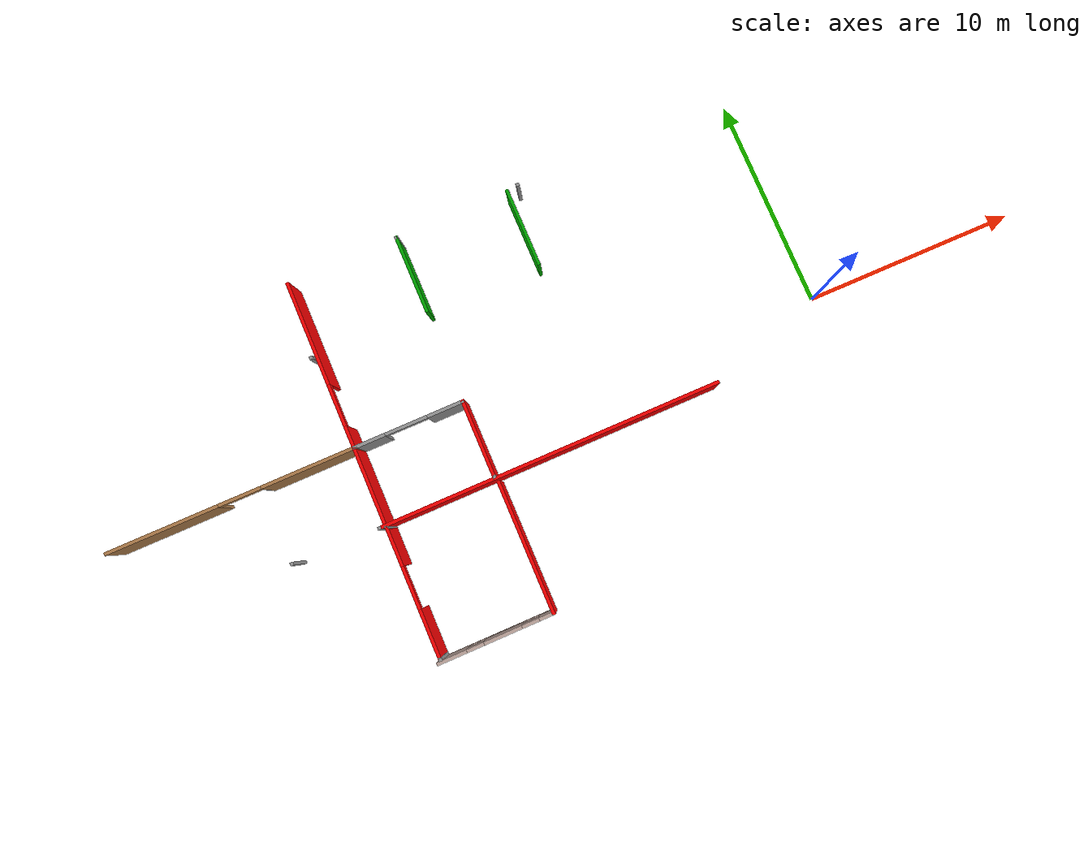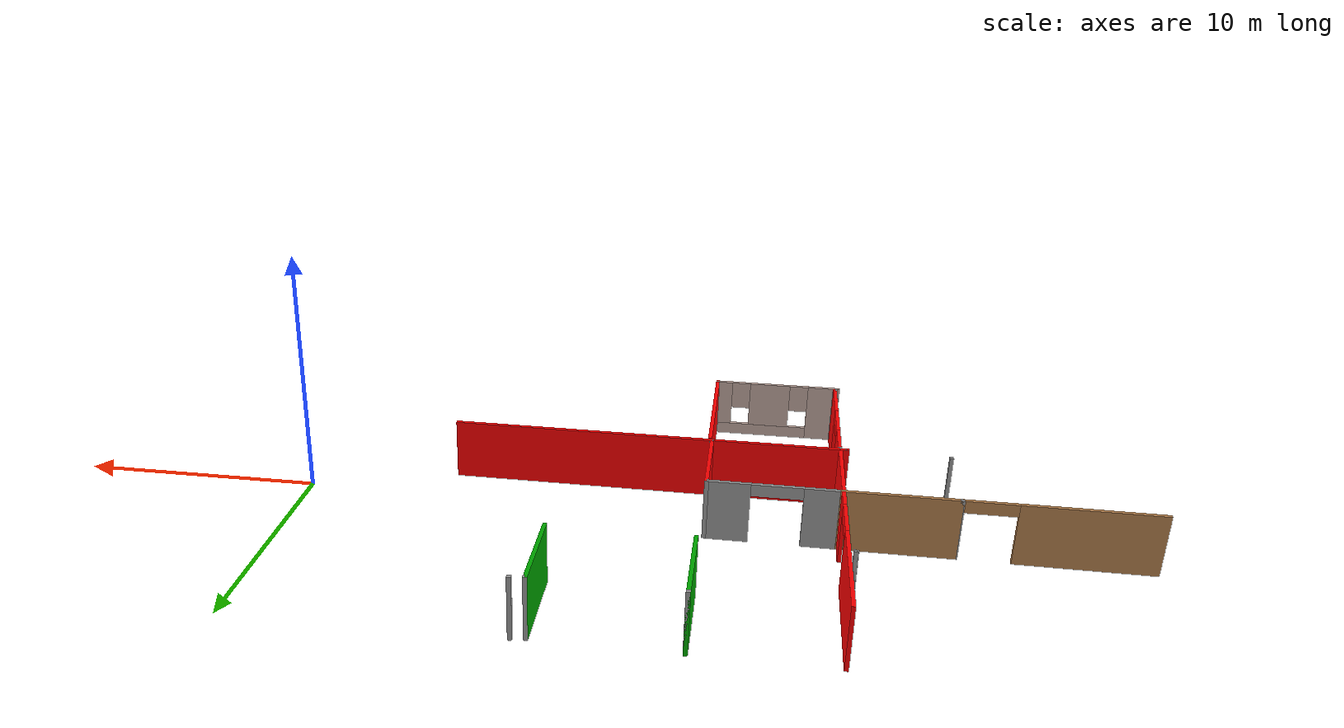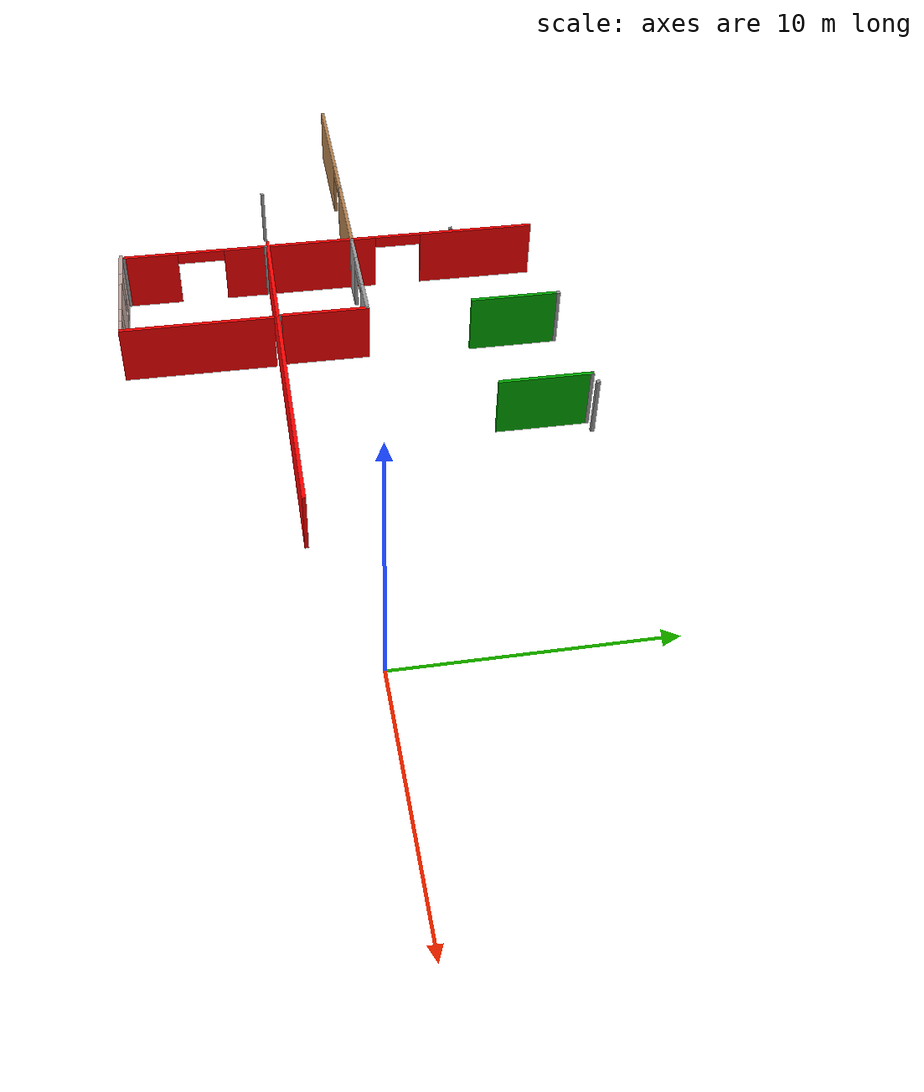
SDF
<sdf version="1.6">
 <model name="FloorPlan">
  <pose>-3.5402 -2.3631 0 0 -0 0</pose>
  <link name="Wall_11">
   <pose>-18.2258 6.2811 0 0 -0 -1.5708</pose>
   <visual name="Wall_11_Visual_0">
    <pose>-3.31145 0 1.25 0 -0 0</pose>
    <geometry><box><size>4.97711 0.15 2.5</size></box></geometry>
    <material>
     <script><uri>file://media/materials/scripts/gazebo.material</uri><name>Gazebo/Grey</name></script>
     <ambient>1 0 0 1</ambient>
    </material>
    <meta><layer>0</layer></meta>
   </visual>
   <collision name="Wall_11_Collision_0">
    <geometry><box><size>4.97711 0.15 2.5</size></box></geometry>
    <pose>-3.31145 0 1.25 0 -0 0</pose>
   </collision>
   <visual name="Wall_11_Visual_1">
    <pose>3.48855 0 1.25 0 -0 0</pose>
    <geometry><box><size>4.62289 0.15 2.5</size></box></geometry>
    <material>
     <script><uri>file://media/materials/scripts/gazebo.material</uri><name>Gazebo/Grey</name></script>
     <ambient>1 0 0 1</ambient>
    </material>
    <meta><layer>0</layer></meta>
   </visual>
   <collision name="Wall_11_Collision_1">
    <geometry><box><size>4.62289 0.15 2.5</size></box></geometry>
    <pose>3.48855 0 1.25 0 -0 0</pose>
   </collision>
   <visual name="Wall_11_Visual_2">
    <pose>0.177109 0 2.25 0 -0 0</pose>
    <geometry><box><size>2 0.15 0.5</size></box></geometry>
    <material>
     <script><uri>file://media/materials/scripts/gazebo.material</uri><name>Gazebo/Grey</name></script>
     <ambient>1 0 0 1</ambient>
    </material>
    <meta><layer>0</layer></meta>
   </visual>
   <collision name="Wall_11_Collision_2">
    <geometry><box><size>2 0.15 0.5</size></box></geometry>
    <pose>0.177109 0 2.25 0 -0 0</pose>
   </collision>
  </link>
  <link name="Wall_16">
   <collision name="Wall_16_Collision">
    <geometry><box><size>0.16 0.15 2.5</size></box></geometry>
    <pose>0 0 1.25 0 -0 0</pose>
   </collision>
   <visual name="Wall_16_Visual">
    <pose>0 0 1.25 0 -0 0</pose>
    <geometry><box><size>0.16 0.15 2.5</size></box></geometry>
    <material>
     <script><uri>file://media/materials/scripts/gazebo.material</uri><name>Gazebo/Grey</name></script>
     <ambient>1 1 1 1</ambient>
    </material>
    <meta><layer>0</layer></meta>
   </visual>
   <pose>-18.2024 0.299775 0 0 -0 0</pose>
  </link>
  <link name="Wall_34">
   <pose>-23.9824 4.0709 0 0 -0 0</pose>
   <visual name="Wall_34_Visual_0">
    <pose>-3.2427 0 1.25 0 -0 0</pose>
    <geometry><box><size>5.26459 0.15 2.5</size></box></geometry>
    <material>
     <script><uri>file://media/materials/scripts/gazebo.material</uri><name>Gazebo/Wood</name></script>
     <ambient>1 1 1 1</ambient>
    </material>
    <meta><layer>0</layer></meta>
   </visual>
   <collision name="Wall_34_Collision_0">
    <geometry><box><size>5.26459 0.15 2.5</size></box></geometry>
    <pose>-3.2427 0 1.25 0 -0 0</pose>
   </collision>
   <visual name="Wall_34_Visual_1">
    <pose>3.6323 0 1.25 0 -0 0</pose>
    <geometry><box><size>4.48541 0.15 2.5</size></box></geometry>
    <material>
     <script><uri>file://media/materials/scripts/gazebo.material</uri><name>Gazebo/Wood</name></script>
     <ambient>1 1 1 1</ambient>
    </material>
    <meta><layer>0</layer></meta>
   </visual>
   <collision name="Wall_34_Collision_1">
    <geometry><box><size>4.48541 0.15 2.5</size></box></geometry>
    <pose>3.6323 0 1.25 0 -0 0</pose>
   </collision>
   <visual name="Wall_34_Visual_2">
    <pose>0.389591 0 2.25 0 -0 0</pose>
    <geometry><box><size>2 0.15 0.5</size></box></geometry>
    <material>
     <script><uri>file://media/materials/scripts/gazebo.material</uri><name>Gazebo/Wood</name></script>
     <ambient>1 1 1 1</ambient>
    </material>
    <meta><layer>0</layer></meta>
   </visual>
   <collision name="Wall_34_Collision_2">
    <geometry><box><size>2 0.15 0.5</size></box></geometry>
    <pose>0.389591 0 2.25 0 -0 0</pose>
   </collision>
  </link>
  <link name="Wall_35">
   <collision name="Wall_35_Collision">
    <geometry><box><size>0.16 0.15 2.5</size></box></geometry>
    <pose>0 0 1.25 0 -0 0</pose>
   </collision>
   <visual name="Wall_35_Visual">
    <pose>0 0 1.25 0 -0 0</pose>
    <geometry><box><size>0.16 0.15 2.5</size></box></geometry>
    <material>
     <script><uri>file://media/materials/scripts/gazebo.material</uri><name>Gazebo/Grey</name></script>
     <ambient>1 1 1 1</ambient>
    </material>
    <meta><layer>0</layer></meta>
   </visual>
   <pose>-18.1774 4.0709 0 0 -0 0</pose>
  </link>
  <link name="Wall_40">
   <collision name="Wall_40_Collision">
    <geometry><box><size>0.16 0.15 2.5</size></box></geometry>
    <pose>0 0 1.25 0 -0 0</pose>
   </collision>
   <visual name="Wall_40_Visual">
    <pose>0 0 1.25 0 -0 0</pose>
    <geometry><box><size>0.16 0.15 2.5</size></box></geometry>
    <material>
     <script><uri>file://media/materials/scripts/gazebo.material</uri><name>Gazebo/Grey</name></script>
     <ambient>1 1 1 1</ambient>
    </material>
    <meta><layer>0</layer></meta>
   </visual>
   <pose>-22.5545 4.0709 0 0 -0 0</pose>
  </link>
  <link name="Wall_42">
   <collision name="Wall_42_Collision">
    <geometry><box><size>0.15 0.15 2.5</size></box></geometry>
    <pose>0 0 1.25 0 -0 0</pose>
   </collision>
   <visual name="Wall_42_Visual">
    <pose>0 0 1.25 0 -0 0</pose>
    <geometry><box><size>0.15 0.15 2.5</size></box></geometry>
    <material>
     <script><uri>file://media/materials/scripts/gazebo.material</uri><name>Gazebo/Grey</name></script>
     <ambient>1 1 1 1</ambient>
    </material>
    <meta><layer>0</layer></meta>
   </visual>
   <pose>-22.5495 0.470897 0 0 -0 0</pose>
  </link>
  <link name="Wall_49">
   <pose>-15.6609 -5.93407 0 0 -0 0</pose>
   <visual name="Wall_49_Visual_0">
    <pose>-2.05494 0 1.25 0 -0 0</pose>
    <geometry><box><size>1.39012 0.15 2.5</size></box></geometry>
    <material>
     <script><uri>file://media/materials/scripts/gazebo.material</uri><name>Gazebo/Grey</name></script>
     <ambient>0.760784 0.662745 0.627451 1</ambient>
    </material>
    <meta><layer>0</layer></meta>
   </visual>
   <collision name="Wall_49_Collision_0">
    <geometry><box><size>1.39012 0.15 2.5</size></box></geometry>
    <pose>-2.05494 0 1.25 0 -0 0</pose>
   </collision>
   <visual name="Wall_49_Visual_1">
    <pose>0.69506 0 0.25 0 -0 0</pose>
    <geometry><box><size>4.10988 0.15 0.5</size></box></geometry>
    <material>
     <script><uri>file://media/materials/scripts/gazebo.material</uri><name>Gazebo/Grey</name></script>
     <ambient>0.760784 0.662745 0.627451 1</ambient>
    </material>
    <meta><layer>0</layer></meta>
   </visual>
   <collision name="Wall_49_Collision_1">
    <geometry><box><size>4.10988 0.15 0.5</size></box></geometry>
    <pose>0.69506 0 0.25 0 -0 0</pose>
   </collision>
   <visual name="Wall_49_Visual_2">
    <pose>0.324179 0 1.5 0 -0 0</pose>
    <geometry><box><size>1.76812 0.15 2</size></box></geometry>
    <material>
     <script><uri>file://media/materials/scripts/gazebo.material</uri><name>Gazebo/Grey</name></script>
     <ambient>0.760784 0.662745 0.627451 1</ambient>
    </material>
    <meta><layer>0</layer></meta>
   </visual>
   <collision name="Wall_49_Collision_2">
    <geometry><box><size>1.76812 0.15 2</size></box></geometry>
    <pose>0.324179 0 1.5 0 -0 0</pose>
   </collision>
   <visual name="Wall_49_Visual_3">
    <pose>2.37912 0 1.5 0 -0 0</pose>
    <geometry><box><size>0.741762 0.15 2</size></box></geometry>
    <material>
     <script><uri>file://media/materials/scripts/gazebo.material</uri><name>Gazebo/Grey</name></script>
     <ambient>0.760784 0.662745 0.627451 1</ambient>
    </material>
    <meta><layer>0</layer></meta>
   </visual>
   <collision name="Wall_49_Collision_3">
    <geometry><box><size>0.741762 0.15 2</size></box></geometry>
    <pose>2.37912 0 1.5 0 -0 0</pose>
   </collision>
   <visual name="Wall_49_Visual_4">
    <pose>-0.959881 0 1.9 0 -0 0</pose>
    <geometry><box><size>0.8 0.15 1.2</size></box></geometry>
    <material>
     <script><uri>file://media/materials/scripts/gazebo.material</uri><name>Gazebo/Grey</name></script>
     <ambient>0.760784 0.662745 0.627451 1</ambient>
    </material>
    <meta><layer>0</layer></meta>
   </visual>
   <collision name="Wall_49_Collision_4">
    <geometry><box><size>0.8 0.15 1.2</size></box></geometry>
    <pose>-0.959881 0 1.9 0 -0 0</pose>
   </collision>
   <visual name="Wall_49_Visual_5">
    <pose>1.60824 0 1.9 0 -0 0</pose>
    <geometry><box><size>0.8 0.15 1.2</size></box></geometry>
    <material>
     <script><uri>file://media/materials/scripts/gazebo.material</uri><name>Gazebo/Grey</name></script>
     <ambient>0.760784 0.662745 0.627451 1</ambient>
    </material>
    <meta><layer>0</layer></meta>
   </visual>
   <collision name="Wall_49_Collision_5">
    <geometry><box><size>0.8 0.15 1.2</size></box></geometry>
    <pose>1.60824 0 1.9 0 -0 0</pose>
   </collision>
  </link>
  <link name="Wall_54">
   <collision name="Wall_54_Collision">
    <geometry><box><size>6.25 0.15 2.5</size></box></geometry>
    <pose>0 0 1.25 0 -0 0</pose>
   </collision>
   <visual name="Wall_54_Visual">
    <pose>0 0 1.25 0 -0 0</pose>
    <geometry><box><size>6.25 0.15 2.5</size></box></geometry>
    <material>
     <script><uri>file://media/materials/scripts/gazebo.material</uri><name>Gazebo/Grey</name></script>
     <ambient>1 0 0 1</ambient>
    </material>
    <meta><layer>0</layer></meta>
   </visual>
   <pose>-12.9859 -2.88407 0 0 -0 1.5708</pose>
  </link>
  <link name="Wall_62">
   <collision name="Wall_62_Collision">
    <geometry><box><size>0.16 0.15 2.5</size></box></geometry>
    <pose>0 0 1.25 0 -0 0</pose>
   </collision>
   <visual name="Wall_62_Visual">
    <pose>0 0 1.25 0 -0 0</pose>
    <geometry><box><size>0.16 0.15 2.5</size></box></geometry>
    <material>
     <script><uri>file://media/materials/scripts/gazebo.material</uri><name>Gazebo/Grey</name></script>
     <ambient>1 1 1 1</ambient>
    </material>
    <meta><layer>0</layer></meta>
   </visual>
   <pose>-18.4809 8.5116 0 0 -0 0</pose>
  </link>
  <link name="Wall_63">
   <collision name="Wall_63_Collision">
    <geometry><box><size>0.16 0.15 2.5</size></box></geometry>
    <pose>0 0 1.25 0 -0 0</pose>
   </collision>
   <visual name="Wall_63_Visual">
    <pose>0 0 1.25 0 -0 0</pose>
    <geometry><box><size>0.16 0.15 2.5</size></box></geometry>
    <material>
     <script><uri>file://media/materials/scripts/gazebo.material</uri><name>Gazebo/Grey</name></script>
     <ambient>1 1 1 1</ambient>
    </material>
    <meta><layer>0</layer></meta>
   </visual>
   <pose>-18.4709 8.5116 0 0 -0 0</pose>
  </link>
  <link name="Wall_65">
   <pose>-18.2074 -2.75022 0 0 -0 -1.5708</pose>
   <visual name="Wall_65_Visual_0">
    <pose>-2.18266 0 1.25 0 -0 0</pose>
    <geometry><box><size>1.88469 0.15 2.5</size></box></geometry>
    <material>
     <script><uri>file://media/materials/scripts/gazebo.material</uri><name>Gazebo/Grey</name></script>
     <ambient>1 0 0 1</ambient>
    </material>
    <meta><layer>0</layer></meta>
   </visual>
   <collision name="Wall_65_Collision_0">
    <geometry><box><size>1.88469 0.15 2.5</size></box></geometry>
    <pose>-2.18266 0 1.25 0 -0 0</pose>
   </collision>
   <visual name="Wall_65_Visual_1">
    <pose>1.94234 0 1.25 0 -0 0</pose>
    <geometry><box><size>2.36531 0.15 2.5</size></box></geometry>
    <material>
     <script><uri>file://media/materials/scripts/gazebo.material</uri><name>Gazebo/Grey</name></script>
     <ambient>1 0 0 1</ambient>
    </material>
    <meta><layer>0</layer></meta>
   </visual>
   <collision name="Wall_65_Collision_1">
    <geometry><box><size>2.36531 0.15 2.5</size></box></geometry>
    <pose>1.94234 0 1.25 0 -0 0</pose>
   </collision>
   <visual name="Wall_65_Visual_2">
    <pose>-0.240314 0 2.25 0 -0 0</pose>
    <geometry><box><size>2 0.15 0.5</size></box></geometry>
    <material>
     <script><uri>file://media/materials/scripts/gazebo.material</uri><name>Gazebo/Grey</name></script>
     <ambient>1 0 0 1</ambient>
    </material>
    <meta><layer>0</layer></meta>
   </visual>
   <collision name="Wall_65_Collision_2">
    <geometry><box><size>2 0.15 0.5</size></box></geometry>
    <pose>-0.240314 0 2.25 0 -0 0</pose>
   </collision>
  </link>
  <link name="Wall_66">
   <collision name="Wall_66_Collision">
    <geometry><box><size>0.16 0.15 2.5</size></box></geometry>
    <pose>0 0 1.25 0 -0 0</pose>
   </collision>
   <visual name="Wall_66_Visual">
    <pose>0 0 1.25 0 -0 0</pose>
    <geometry><box><size>0.16 0.15 2.5</size></box></geometry>
    <material>
     <script><uri>file://media/materials/scripts/gazebo.material</uri><name>Gazebo/Grey</name></script>
     <ambient>1 1 1 1</ambient>
    </material>
    <meta><layer>0</layer></meta>
   </visual>
   <pose>-18.2024 -5.80023 0 0 -0 0</pose>
  </link>
  <link name="Wall_67">
   <collision name="Wall_67_Collision">
    <geometry><box><size>0.16 0.15 2.5</size></box></geometry>
    <pose>0 0 1.25 0 -0 0</pose>
   </collision>
   <visual name="Wall_67_Visual">
    <pose>0 0 1.25 0 -0 0</pose>
    <geometry><box><size>0.16 0.15 2.5</size></box></geometry>
    <material>
     <script><uri>file://media/materials/scripts/gazebo.material</uri><name>Gazebo/Grey</name></script>
     <ambient>1 1 1 1</ambient>
    </material>
    <meta><layer>0</layer></meta>
   </visual>
   <pose>-18.1924 -5.80023 0 0 -0 0</pose>
  </link>
  <link name="Wall_68">
   <collision name="Wall_68_Collision">
    <geometry><box><size>0.16 0.15 2.5</size></box></geometry>
    <pose>0 0 1.25 0 -0 0</pose>
   </collision>
   <visual name="Wall_68_Visual">
    <pose>0 0 1.25 0 -0 0</pose>
    <geometry><box><size>0.16 0.15 2.5</size></box></geometry>
    <material>
     <script><uri>file://media/materials/scripts/gazebo.material</uri><name>Gazebo/Grey</name></script>
     <ambient>1 1 1 1</ambient>
    </material>
    <meta><layer>0</layer></meta>
   </visual>
   <pose>-18.1924 -5.80023 0 0 -0 3.14159</pose>
  </link>
  <link name="Wall_70">
   <collision name="Wall_70_Collision">
    <geometry><box><size>0.16 0.15 2.5</size></box></geometry>
    <pose>0 0 1.25 0 -0 0</pose>
   </collision>
   <visual name="Wall_70_Visual">
    <pose>0 0 1.25 0 -0 0</pose>
    <geometry><box><size>0.16 0.15 2.5</size></box></geometry>
    <material>
     <script><uri>file://media/materials/scripts/gazebo.material</uri><name>Gazebo/Grey</name></script>
     <ambient>1 1 1 1</ambient>
    </material>
    <meta><layer>0</layer></meta>
   </visual>
   <pose>-7.03882 12.1498 0 0 -0 0</pose>
  </link>
  <link name="Wall_8">
   <collision name="Wall_8_Collision">
    <geometry><box><size>16.25 0.15 2.5</size></box></geometry>
    <pose>0 0 1.25 0 -0 0</pose>
   </collision>
   <visual name="Wall_8_Visual">
    <pose>0 0 1.25 0 -0 0</pose>
    <geometry><box><size>16.25 0.15 2.5</size></box></geometry>
    <material>
     <script><uri>file://media/materials/scripts/gazebo.material</uri><name>Gazebo/Grey</name></script>
     <ambient>1 0 0 1</ambient>
    </material>
    <meta><layer>0</layer></meta>
   </visual>
   <pose>-10.4574 0.399775 0 0 -0 3.14159</pose>
  </link>
  <link name="Wall_85">
   <pose>-15.6324 4.0709 0 0 -0 0</pose>
   <visual name="Wall_85_Visual_0">
    <pose>-1.87867 0 1.25 0 -0 0</pose>
    <geometry><box><size>1.49266 0.15 2.5</size></box></geometry>
    <material>
     <script><uri>file://media/materials/scripts/gazebo.material</uri><name>Gazebo/Grey</name></script>
     <ambient>1 1 1 1</ambient>
    </material>
    <meta><layer>0</layer></meta>
   </visual>
   <collision name="Wall_85_Collision_0">
    <geometry><box><size>1.49266 0.15 2.5</size></box></geometry>
    <pose>-1.87867 0 1.25 0 -0 0</pose>
   </collision>
   <visual name="Wall_85_Visual_1">
    <pose>1.74633 0 1.25 0 -0 0</pose>
    <geometry><box><size>1.75734 0.15 2.5</size></box></geometry>
    <material>
     <script><uri>file://media/materials/scripts/gazebo.material</uri><name>Gazebo/Grey</name></script>
     <ambient>1 1 1 1</ambient>
    </material>
    <meta><layer>0</layer></meta>
   </visual>
   <collision name="Wall_85_Collision_1">
    <geometry><box><size>1.75734 0.15 2.5</size></box></geometry>
    <pose>1.74633 0 1.25 0 -0 0</pose>
   </collision>
   <visual name="Wall_85_Visual_2">
    <pose>-0.132345 0 2.25 0 -0 0</pose>
    <geometry><box><size>2 0.15 0.5</size></box></geometry>
    <material>
     <script><uri>file://media/materials/scripts/gazebo.material</uri><name>Gazebo/Grey</name></script>
     <ambient>1 1 1 1</ambient>
    </material>
    <meta><layer>0</layer></meta>
   </visual>
   <collision name="Wall_85_Collision_2">
    <geometry><box><size>2 0.15 0.5</size></box></geometry>
    <pose>-0.132345 0 2.25 0 -0 0</pose>
   </collision>
  </link>
  <link name="Wall_86">
   <collision name="Wall_86_Collision">
    <geometry><box><size>0.16 0.15 2.5</size></box></geometry>
    <pose>0 0 1.25 0 -0 0</pose>
   </collision>
   <visual name="Wall_86_Visual">
    <pose>0 0 1.25 0 -0 0</pose>
    <geometry><box><size>0.16 0.15 2.5</size></box></geometry>
    <material>
     <script><uri>file://media/materials/scripts/gazebo.material</uri><name>Gazebo/Grey</name></script>
     <ambient>1 1 1 1</ambient>
    </material>
    <meta><layer>0</layer></meta>
   </visual>
   <pose>-13.0774 4.0709 0 0 -0 0</pose>
  </link>
  <link name="Wall_87">
   <collision name="Wall_87_Collision">
    <geometry><box><size>3.75 0.15 2.5</size></box></geometry>
    <pose>0 0 1.25 0 -0 0</pose>
   </collision>
   <visual name="Wall_87_Visual">
    <pose>0 0 1.25 0 -0 0</pose>
    <geometry><box><size>3.75 0.15 2.5</size></box></geometry>
    <material>
     <script><uri>file://media/materials/scripts/gazebo.material</uri><name>Gazebo/Grey</name></script>
     <ambient>1 0 0 1</ambient>
    </material>
    <meta><layer>0</layer></meta>
   </visual>
   <pose>-13.0724 2.2709 0 0 -0 -1.5708</pose>
  </link>
  <link name="Wall_88">
   <collision name="Wall_88_Collision">
    <geometry><box><size>0.16 0.15 2.5</size></box></geometry>
    <pose>0 0 1.25 0 -0 0</pose>
   </collision>
   <visual name="Wall_88_Visual">
    <pose>0 0 1.25 0 -0 0</pose>
    <geometry><box><size>0.16 0.15 2.5</size></box></geometry>
    <material>
     <script><uri>file://media/materials/scripts/gazebo.material</uri><name>Gazebo/Grey</name></script>
     <ambient>1 1 1 1</ambient>
    </material>
    <meta><layer>0</layer></meta>
   </visual>
   <pose>-13.0674 0.470897 0 0 -0 0</pose>
  </link>
  <link name="Wall_9">
   <collision name="Wall_9_Collision">
    <geometry><box><size>0.16 0.15 2.5</size></box></geometry>
    <pose>0 0 1.25 0 -0 0</pose>
   </collision>
   <visual name="Wall_9_Visual">
    <pose>0 0 1.25 0 -0 0</pose>
    <geometry><box><size>0.16 0.15 2.5</size></box></geometry>
    <material>
     <script><uri>file://media/materials/scripts/gazebo.material</uri><name>Gazebo/Grey</name></script>
     <ambient>1 1 1 1</ambient>
    </material>
    <meta><layer>0</layer></meta>
   </visual>
   <pose>-18.5024 0.399775 0 0 -0 0</pose>
  </link>
  <link name="Wall_90">
   <collision name="Wall_90_Collision">
    <geometry><box><size>3.75 0.15 2.5</size></box></geometry>
    <pose>0 0 1.25 0 -0 0</pose>
   </collision>
   <visual name="Wall_90_Visual">
    <pose>0 0 1.25 0 -0 0</pose>
    <geometry><box><size>3.75 0.15 2.5</size></box></geometry>
    <material>
     <script><uri>file://media/materials/scripts/gazebo.material</uri><name>Gazebo/Grey</name></script>
     <ambient>0 0.666667 0 1</ambient>
    </material>
    <meta><layer>0</layer></meta>
   </visual>
   <pose>-12.9826 10.2581 0 0 -0 1.5708</pose>
  </link>
  <link name="Wall_91">
   <collision name="Wall_91_Collision">
    <geometry><box><size>0.16 0.15 2.5</size></box></geometry>
    <pose>0 0 1.25 0 -0 0</pose>
   </collision>
   <visual name="Wall_91_Visual">
    <pose>0 0 1.25 0 -0 0</pose>
    <geometry><box><size>0.16 0.15 2.5</size></box></geometry>
    <material>
     <script><uri>file://media/materials/scripts/gazebo.material</uri><name>Gazebo/Grey</name></script>
     <ambient>1 1 1 1</ambient>
    </material>
    <meta><layer>0</layer></meta>
   </visual>
   <pose>-12.9776 12.0581 0 0 -0 0</pose>
  </link>
  <link name="Wall_98">
   <collision name="Wall_98_Collision">
    <geometry><box><size>3.75 0.15 2.5</size></box></geometry>
    <pose>0 0 1.25 0 -0 0</pose>
   </collision>
   <visual name="Wall_98_Visual">
    <pose>0 0 1.25 0 -0 0</pose>
    <geometry><box><size>3.75 0.15 2.5</size></box></geometry>
    <material>
     <script><uri>file://media/materials/scripts/gazebo.material</uri><name>Gazebo/Grey</name></script>
     <ambient>0 0.666667 0 1</ambient>
    </material>
    <meta><layer>0</layer></meta>
   </visual>
   <pose>-7.57885 10.2581 0 0 -0 1.5708</pose>
  </link>
  <link name="Wall_99">
   <collision name="Wall_99_Collision">
    <geometry><box><size>0.16 0.15 2.5</size></box></geometry>
    <pose>0 0 1.25 0 -0 0</pose>
   </collision>
   <visual name="Wall_99_Visual">
    <pose>0 0 1.25 0 -0 0</pose>
    <geometry><box><size>0.16 0.15 2.5</size></box></geometry>
    <material>
     <script><uri>file://media/materials/scripts/gazebo.material</uri><name>Gazebo/Grey</name></script>
     <ambient>1 1 1 1</ambient>
    </material>
    <meta><layer>0</layer></meta>
   </visual>
   <pose>-7.57385 12.0581 0 0 -0 0</pose>
  </link>
  <static>1</static>
 </model>
</sdf>
